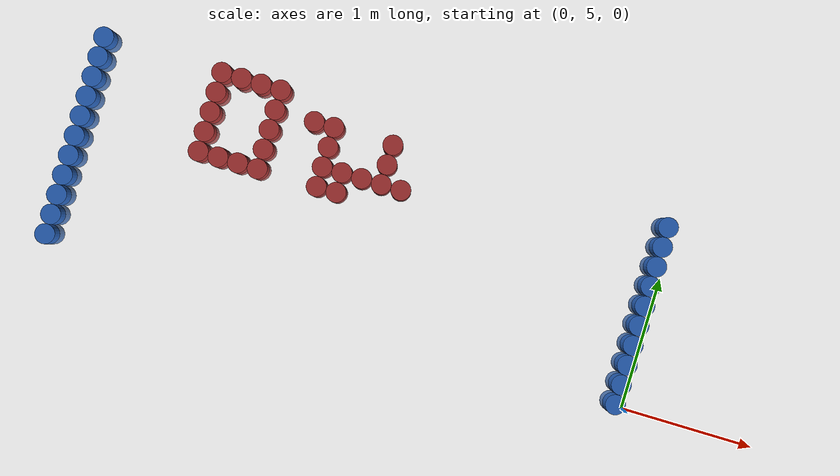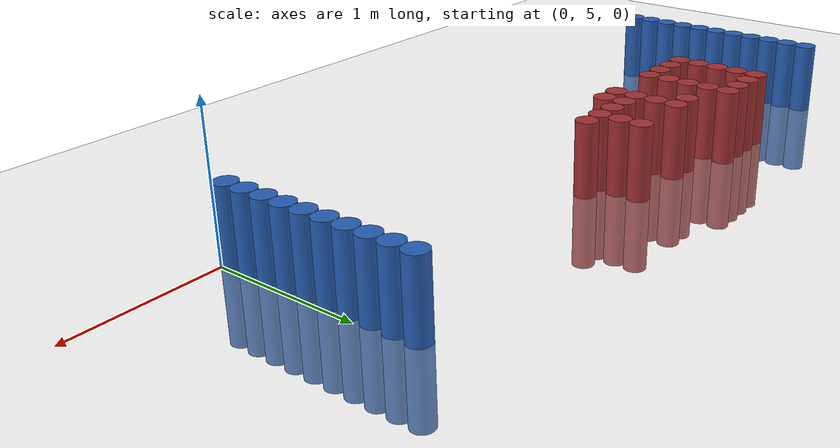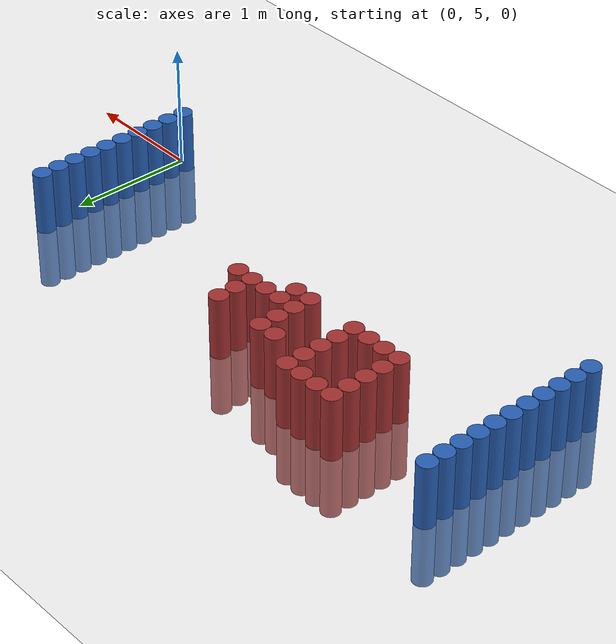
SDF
<sdf version="1.6">
 <world name="default">
  <model name="ground_plane">
   <static>1</static>
   <link name="link">
    <collision name="collision">
     <geometry><plane><normal>0 0 1</normal><size>100 100</size></plane></geometry>
     <surface><friction><ode><mu>100</mu><mu2>50</mu2></ode></friction></surface>
    </collision>
    <visual name="visual">
     <cast_shadows>0</cast_shadows>
     <geometry><plane><normal>0 0 1</normal><size>100 100</size></plane></geometry>
     <material>
      <script><uri>file://media/materials/scripts/gazebo.material</uri><name>Gazebo/Grey</name></script>
     </material>
    </visual>
   </link>
  </model>
  <model name="unit_cylinder_94">
   <static>1</static>
   <pose>-0.075000 5.025000 0.000000 0.000000 0.000000 0.000000</pose>
   <link name="link">
    <inertial>
     <mass>1</mass>
     <inertia><ixx>0.145833</ixx><ixy>0</ixy><ixz>0</ixz><iyy>0.145833</iyy><iyz>0</iyz><izz>0.125</izz></inertia>
    </inertial>
    <collision name="collision">
     <geometry><cylinder><radius>0.075000</radius><length>1</length></cylinder></geometry>
    </collision>
    <visual name="visual">
     <geometry><cylinder><radius>0.075000</radius><length>1</length></cylinder></geometry>
     <material>
      <ambient>0.152000 0.379000 0.720000 1</ambient>
      <diffuse>0.152000 0.379000 0.720000 1</diffuse>
     </material>
     <material>
      <script><name>Gazebo/Grey</name><uri>file://media/materials/scripts/gazebo.material</uri></script>
     </material>
    </visual>
   </link>
  </model>
  <model name="unit_cylinder_95">
   <static>1</static>
   <pose>-4.425000 5.025000 0.000000 0.000000 0.000000 0.000000</pose>
   <link name="link">
    <inertial>
     <mass>1</mass>
     <inertia><ixx>0.145833</ixx><ixy>0</ixy><ixz>0</ixz><iyy>0.145833</iyy><iyz>0</iyz><izz>0.125</izz></inertia>
    </inertial>
    <collision name="collision">
     <geometry><cylinder><radius>0.075000</radius><length>1</length></cylinder></geometry>
    </collision>
    <visual name="visual">
     <geometry><cylinder><radius>0.075000</radius><length>1</length></cylinder></geometry>
     <material>
      <ambient>0.152000 0.379000 0.720000 1</ambient>
      <diffuse>0.152000 0.379000 0.720000 1</diffuse>
     </material>
     <material>
      <script><name>Gazebo/Grey</name><uri>file://media/materials/scripts/gazebo.material</uri></script>
     </material>
    </visual>
   </link>
  </model>
  <model name="unit_cylinder_96">
   <static>1</static>
   <pose>-4.425000 5.175000 0.000000 0.000000 0.000000 0.000000</pose>
   <link name="link">
    <inertial>
     <mass>1</mass>
     <inertia><ixx>0.145833</ixx><ixy>0</ixy><ixz>0</ixz><iyy>0.145833</iyy><iyz>0</iyz><izz>0.125</izz></inertia>
    </inertial>
    <collision name="collision">
     <geometry><cylinder><radius>0.075000</radius><length>1</length></cylinder></geometry>
    </collision>
    <visual name="visual">
     <geometry><cylinder><radius>0.075000</radius><length>1</length></cylinder></geometry>
     <material>
      <ambient>0.152000 0.379000 0.720000 1</ambient>
      <diffuse>0.152000 0.379000 0.720000 1</diffuse>
     </material>
     <material>
      <script><name>Gazebo/Grey</name><uri>file://media/materials/scripts/gazebo.material</uri></script>
     </material>
    </visual>
   </link>
  </model>
  <model name="unit_cylinder_97">
   <static>1</static>
   <pose>-4.425000 5.325000 0.000000 0.000000 0.000000 0.000000</pose>
   <link name="link">
    <inertial>
     <mass>1</mass>
     <inertia><ixx>0.145833</ixx><ixy>0</ixy><ixz>0</ixz><iyy>0.145833</iyy><iyz>0</iyz><izz>0.125</izz></inertia>
    </inertial>
    <collision name="collision">
     <geometry><cylinder><radius>0.075000</radius><length>1</length></cylinder></geometry>
    </collision>
    <visual name="visual">
     <geometry><cylinder><radius>0.075000</radius><length>1</length></cylinder></geometry>
     <material>
      <ambient>0.152000 0.379000 0.720000 1</ambient>
      <diffuse>0.152000 0.379000 0.720000 1</diffuse>
     </material>
     <material>
      <script><name>Gazebo/Grey</name><uri>file://media/materials/scripts/gazebo.material</uri></script>
     </material>
    </visual>
   </link>
  </model>
  <model name="unit_cylinder_98">
   <static>1</static>
   <pose>-4.425000 5.475000 0.000000 0.000000 0.000000 0.000000</pose>
   <link name="link">
    <inertial>
     <mass>1</mass>
     <inertia><ixx>0.145833</ixx><ixy>0</ixy><ixz>0</ixz><iyy>0.145833</iyy><iyz>0</iyz><izz>0.125</izz></inertia>
    </inertial>
    <collision name="collision">
     <geometry><cylinder><radius>0.075000</radius><length>1</length></cylinder></geometry>
    </collision>
    <visual name="visual">
     <geometry><cylinder><radius>0.075000</radius><length>1</length></cylinder></geometry>
     <material>
      <ambient>0.152000 0.379000 0.720000 1</ambient>
      <diffuse>0.152000 0.379000 0.720000 1</diffuse>
     </material>
     <material>
      <script><name>Gazebo/Grey</name><uri>file://media/materials/scripts/gazebo.material</uri></script>
     </material>
    </visual>
   </link>
  </model>
  <model name="unit_cylinder_99">
   <static>1</static>
   <pose>-4.425000 5.625000 0.000000 0.000000 0.000000 0.000000</pose>
   <link name="link">
    <inertial>
     <mass>1</mass>
     <inertia><ixx>0.145833</ixx><ixy>0</ixy><ixz>0</ixz><iyy>0.145833</iyy><iyz>0</iyz><izz>0.125</izz></inertia>
    </inertial>
    <collision name="collision">
     <geometry><cylinder><radius>0.075000</radius><length>1</length></cylinder></geometry>
    </collision>
    <visual name="visual">
     <geometry><cylinder><radius>0.075000</radius><length>1</length></cylinder></geometry>
     <material>
      <ambient>0.152000 0.379000 0.720000 1</ambient>
      <diffuse>0.152000 0.379000 0.720000 1</diffuse>
     </material>
     <material>
      <script><name>Gazebo/Grey</name><uri>file://media/materials/scripts/gazebo.material</uri></script>
     </material>
    </visual>
   </link>
  </model>
  <model name="unit_cylinder_100">
   <static>1</static>
   <pose>-4.425000 5.775000 0.000000 0.000000 0.000000 0.000000</pose>
   <link name="link">
    <inertial>
     <mass>1</mass>
     <inertia><ixx>0.145833</ixx><ixy>0</ixy><ixz>0</ixz><iyy>0.145833</iyy><iyz>0</iyz><izz>0.125</izz></inertia>
    </inertial>
    <collision name="collision">
     <geometry><cylinder><radius>0.075000</radius><length>1</length></cylinder></geometry>
    </collision>
    <visual name="visual">
     <geometry><cylinder><radius>0.075000</radius><length>1</length></cylinder></geometry>
     <material>
      <ambient>0.152000 0.379000 0.720000 1</ambient>
      <diffuse>0.152000 0.379000 0.720000 1</diffuse>
     </material>
     <material>
      <script><name>Gazebo/Grey</name><uri>file://media/materials/scripts/gazebo.material</uri></script>
     </material>
    </visual>
   </link>
  </model>
  <model name="unit_cylinder_101">
   <static>1</static>
   <pose>-4.425000 5.925000 0.000000 0.000000 0.000000 0.000000</pose>
   <link name="link">
    <inertial>
     <mass>1</mass>
     <inertia><ixx>0.145833</ixx><ixy>0</ixy><ixz>0</ixz><iyy>0.145833</iyy><iyz>0</iyz><izz>0.125</izz></inertia>
    </inertial>
    <collision name="collision">
     <geometry><cylinder><radius>0.075000</radius><length>1</length></cylinder></geometry>
    </collision>
    <visual name="visual">
     <geometry><cylinder><radius>0.075000</radius><length>1</length></cylinder></geometry>
     <material>
      <ambient>0.152000 0.379000 0.720000 1</ambient>
      <diffuse>0.152000 0.379000 0.720000 1</diffuse>
     </material>
     <material>
      <script><name>Gazebo/Grey</name><uri>file://media/materials/scripts/gazebo.material</uri></script>
     </material>
    </visual>
   </link>
  </model>
  <model name="unit_cylinder_102">
   <static>1</static>
   <pose>-4.425000 6.075000 0.000000 0.000000 0.000000 0.000000</pose>
   <link name="link">
    <inertial>
     <mass>1</mass>
     <inertia><ixx>0.145833</ixx><ixy>0</ixy><ixz>0</ixz><iyy>0.145833</iyy><iyz>0</iyz><izz>0.125</izz></inertia>
    </inertial>
    <collision name="collision">
     <geometry><cylinder><radius>0.075000</radius><length>1</length></cylinder></geometry>
    </collision>
    <visual name="visual">
     <geometry><cylinder><radius>0.075000</radius><length>1</length></cylinder></geometry>
     <material>
      <ambient>0.152000 0.379000 0.720000 1</ambient>
      <diffuse>0.152000 0.379000 0.720000 1</diffuse>
     </material>
     <material>
      <script><name>Gazebo/Grey</name><uri>file://media/materials/scripts/gazebo.material</uri></script>
     </material>
    </visual>
   </link>
  </model>
  <model name="unit_cylinder_103">
   <static>1</static>
   <pose>-4.425000 6.225000 0.000000 0.000000 0.000000 0.000000</pose>
   <link name="link">
    <inertial>
     <mass>1</mass>
     <inertia><ixx>0.145833</ixx><ixy>0</ixy><ixz>0</ixz><iyy>0.145833</iyy><iyz>0</iyz><izz>0.125</izz></inertia>
    </inertial>
    <collision name="collision">
     <geometry><cylinder><radius>0.075000</radius><length>1</length></cylinder></geometry>
    </collision>
    <visual name="visual">
     <geometry><cylinder><radius>0.075000</radius><length>1</length></cylinder></geometry>
     <material>
      <ambient>0.152000 0.379000 0.720000 1</ambient>
      <diffuse>0.152000 0.379000 0.720000 1</diffuse>
     </material>
     <material>
      <script><name>Gazebo/Grey</name><uri>file://media/materials/scripts/gazebo.material</uri></script>
     </material>
    </visual>
   </link>
  </model>
  <model name="unit_cylinder_104">
   <static>1</static>
   <pose>-4.425000 6.375000 0.000000 0.000000 0.000000 0.000000</pose>
   <link name="link">
    <inertial>
     <mass>1</mass>
     <inertia><ixx>0.145833</ixx><ixy>0</ixy><ixz>0</ixz><iyy>0.145833</iyy><iyz>0</iyz><izz>0.125</izz></inertia>
    </inertial>
    <collision name="collision">
     <geometry><cylinder><radius>0.075000</radius><length>1</length></cylinder></geometry>
    </collision>
    <visual name="visual">
     <geometry><cylinder><radius>0.075000</radius><length>1</length></cylinder></geometry>
     <material>
      <ambient>0.152000 0.379000 0.720000 1</ambient>
      <diffuse>0.152000 0.379000 0.720000 1</diffuse>
     </material>
     <material>
      <script><name>Gazebo/Grey</name><uri>file://media/materials/scripts/gazebo.material</uri></script>
     </material>
    </visual>
   </link>
  </model>
  <model name="unit_cylinder_105">
   <static>1</static>
   <pose>-4.425000 6.525000 0.000000 0.000000 0.000000 0.000000</pose>
   <link name="link">
    <inertial>
     <mass>1</mass>
     <inertia><ixx>0.145833</ixx><ixy>0</ixy><ixz>0</ixz><iyy>0.145833</iyy><iyz>0</iyz><izz>0.125</izz></inertia>
    </inertial>
    <collision name="collision">
     <geometry><cylinder><radius>0.075000</radius><length>1</length></cylinder></geometry>
    </collision>
    <visual name="visual">
     <geometry><cylinder><radius>0.075000</radius><length>1</length></cylinder></geometry>
     <material>
      <ambient>0.152000 0.379000 0.720000 1</ambient>
      <diffuse>0.152000 0.379000 0.720000 1</diffuse>
     </material>
     <material>
      <script><name>Gazebo/Grey</name><uri>file://media/materials/scripts/gazebo.material</uri></script>
     </material>
    </visual>
   </link>
  </model>
  <model name="unit_cylinder_137">
   <static>1</static>
   <pose>-3.525000 5.925000 0.000000 0.000000 0.000000 0.000000</pose>
   <link name="link">
    <inertial>
     <mass>1</mass>
     <inertia><ixx>0.145833</ixx><ixy>0</ixy><ixz>0</ixz><iyy>0.145833</iyy><iyz>0</iyz><izz>0.125</izz></inertia>
    </inertial>
    <collision name="collision">
     <geometry><cylinder><radius>0.075000</radius><length>1</length></cylinder></geometry>
    </collision>
    <visual name="visual">
     <geometry><cylinder><radius>0.075000</radius><length>1</length></cylinder></geometry>
     <material>
      <ambient>0.648000 0.192000 0.192000 1</ambient>
      <diffuse>0.648000 0.192000 0.192000 1</diffuse>
     </material>
     <material>
      <script><name>Gazebo/Grey</name><uri>file://media/materials/scripts/gazebo.material</uri></script>
     </material>
    </visual>
   </link>
  </model>
  <model name="unit_cylinder_138">
   <static>1</static>
   <pose>-3.525000 6.075000 0.000000 0.000000 0.000000 0.000000</pose>
   <link name="link">
    <inertial>
     <mass>1</mass>
     <inertia><ixx>0.145833</ixx><ixy>0</ixy><ixz>0</ixz><iyy>0.145833</iyy><iyz>0</iyz><izz>0.125</izz></inertia>
    </inertial>
    <collision name="collision">
     <geometry><cylinder><radius>0.075000</radius><length>1</length></cylinder></geometry>
    </collision>
    <visual name="visual">
     <geometry><cylinder><radius>0.075000</radius><length>1</length></cylinder></geometry>
     <material>
      <ambient>0.648000 0.192000 0.192000 1</ambient>
      <diffuse>0.648000 0.192000 0.192000 1</diffuse>
     </material>
     <material>
      <script><name>Gazebo/Grey</name><uri>file://media/materials/scripts/gazebo.material</uri></script>
     </material>
    </visual>
   </link>
  </model>
  <model name="unit_cylinder_139">
   <static>1</static>
   <pose>-3.525000 6.225000 0.000000 0.000000 0.000000 0.000000</pose>
   <link name="link">
    <inertial>
     <mass>1</mass>
     <inertia><ixx>0.145833</ixx><ixy>0</ixy><ixz>0</ixz><iyy>0.145833</iyy><iyz>0</iyz><izz>0.125</izz></inertia>
    </inertial>
    <collision name="collision">
     <geometry><cylinder><radius>0.075000</radius><length>1</length></cylinder></geometry>
    </collision>
    <visual name="visual">
     <geometry><cylinder><radius>0.075000</radius><length>1</length></cylinder></geometry>
     <material>
      <ambient>0.648000 0.192000 0.192000 1</ambient>
      <diffuse>0.648000 0.192000 0.192000 1</diffuse>
     </material>
     <material>
      <script><name>Gazebo/Grey</name><uri>file://media/materials/scripts/gazebo.material</uri></script>
     </material>
    </visual>
   </link>
  </model>
  <model name="unit_cylinder_140">
   <static>1</static>
   <pose>-3.525000 6.375000 0.000000 0.000000 0.000000 0.000000</pose>
   <link name="link">
    <inertial>
     <mass>1</mass>
     <inertia><ixx>0.145833</ixx><ixy>0</ixy><ixz>0</ixz><iyy>0.145833</iyy><iyz>0</iyz><izz>0.125</izz></inertia>
    </inertial>
    <collision name="collision">
     <geometry><cylinder><radius>0.075000</radius><length>1</length></cylinder></geometry>
    </collision>
    <visual name="visual">
     <geometry><cylinder><radius>0.075000</radius><length>1</length></cylinder></geometry>
     <material>
      <ambient>0.648000 0.192000 0.192000 1</ambient>
      <diffuse>0.648000 0.192000 0.192000 1</diffuse>
     </material>
     <material>
      <script><name>Gazebo/Grey</name><uri>file://media/materials/scripts/gazebo.material</uri></script>
     </material>
    </visual>
   </link>
  </model>
  <model name="unit_cylinder_141">
   <static>1</static>
   <pose>-3.525000 6.525000 0.000000 0.000000 0.000000 0.000000</pose>
   <link name="link">
    <inertial>
     <mass>1</mass>
     <inertia><ixx>0.145833</ixx><ixy>0</ixy><ixz>0</ixz><iyy>0.145833</iyy><iyz>0</iyz><izz>0.125</izz></inertia>
    </inertial>
    <collision name="collision">
     <geometry><cylinder><radius>0.075000</radius><length>1</length></cylinder></geometry>
    </collision>
    <visual name="visual">
     <geometry><cylinder><radius>0.075000</radius><length>1</length></cylinder></geometry>
     <material>
      <ambient>0.648000 0.192000 0.192000 1</ambient>
      <diffuse>0.648000 0.192000 0.192000 1</diffuse>
     </material>
     <material>
      <script><name>Gazebo/Grey</name><uri>file://media/materials/scripts/gazebo.material</uri></script>
     </material>
    </visual>
   </link>
  </model>
  <model name="unit_cylinder_145">
   <static>1</static>
   <pose>-3.375000 5.925000 0.000000 0.000000 0.000000 0.000000</pose>
   <link name="link">
    <inertial>
     <mass>1</mass>
     <inertia><ixx>0.145833</ixx><ixy>0</ixy><ixz>0</ixz><iyy>0.145833</iyy><iyz>0</iyz><izz>0.125</izz></inertia>
    </inertial>
    <collision name="collision">
     <geometry><cylinder><radius>0.075000</radius><length>1</length></cylinder></geometry>
    </collision>
    <visual name="visual">
     <geometry><cylinder><radius>0.075000</radius><length>1</length></cylinder></geometry>
     <material>
      <ambient>0.648000 0.192000 0.192000 1</ambient>
      <diffuse>0.648000 0.192000 0.192000 1</diffuse>
     </material>
     <material>
      <script><name>Gazebo/Grey</name><uri>file://media/materials/scripts/gazebo.material</uri></script>
     </material>
    </visual>
   </link>
  </model>
  <model name="unit_cylinder_146">
   <static>1</static>
   <pose>-3.375000 6.525000 0.000000 0.000000 0.000000 0.000000</pose>
   <link name="link">
    <inertial>
     <mass>1</mass>
     <inertia><ixx>0.145833</ixx><ixy>0</ixy><ixz>0</ixz><iyy>0.145833</iyy><iyz>0</iyz><izz>0.125</izz></inertia>
    </inertial>
    <collision name="collision">
     <geometry><cylinder><radius>0.075000</radius><length>1</length></cylinder></geometry>
    </collision>
    <visual name="visual">
     <geometry><cylinder><radius>0.075000</radius><length>1</length></cylinder></geometry>
     <material>
      <ambient>0.648000 0.192000 0.192000 1</ambient>
      <diffuse>0.648000 0.192000 0.192000 1</diffuse>
     </material>
     <material>
      <script><name>Gazebo/Grey</name><uri>file://media/materials/scripts/gazebo.material</uri></script>
     </material>
    </visual>
   </link>
  </model>
  <model name="unit_cylinder_151">
   <static>1</static>
   <pose>-3.225000 5.925000 0.000000 0.000000 0.000000 0.000000</pose>
   <link name="link">
    <inertial>
     <mass>1</mass>
     <inertia><ixx>0.145833</ixx><ixy>0</ixy><ixz>0</ixz><iyy>0.145833</iyy><iyz>0</iyz><izz>0.125</izz></inertia>
    </inertial>
    <collision name="collision">
     <geometry><cylinder><radius>0.075000</radius><length>1</length></cylinder></geometry>
    </collision>
    <visual name="visual">
     <geometry><cylinder><radius>0.075000</radius><length>1</length></cylinder></geometry>
     <material>
      <ambient>0.648000 0.192000 0.192000 1</ambient>
      <diffuse>0.648000 0.192000 0.192000 1</diffuse>
     </material>
     <material>
      <script><name>Gazebo/Grey</name><uri>file://media/materials/scripts/gazebo.material</uri></script>
     </material>
    </visual>
   </link>
  </model>
  <model name="unit_cylinder_152">
   <static>1</static>
   <pose>-3.225000 6.525000 0.000000 0.000000 0.000000 0.000000</pose>
   <link name="link">
    <inertial>
     <mass>1</mass>
     <inertia><ixx>0.145833</ixx><ixy>0</ixy><ixz>0</ixz><iyy>0.145833</iyy><iyz>0</iyz><izz>0.125</izz></inertia>
    </inertial>
    <collision name="collision">
     <geometry><cylinder><radius>0.075000</radius><length>1</length></cylinder></geometry>
    </collision>
    <visual name="visual">
     <geometry><cylinder><radius>0.075000</radius><length>1</length></cylinder></geometry>
     <material>
      <ambient>0.648000 0.192000 0.192000 1</ambient>
      <diffuse>0.648000 0.192000 0.192000 1</diffuse>
     </material>
     <material>
      <script><name>Gazebo/Grey</name><uri>file://media/materials/scripts/gazebo.material</uri></script>
     </material>
    </visual>
   </link>
  </model>
  <model name="unit_cylinder_156">
   <static>1</static>
   <pose>-3.075000 5.925000 0.000000 0.000000 0.000000 0.000000</pose>
   <link name="link">
    <inertial>
     <mass>1</mass>
     <inertia><ixx>0.145833</ixx><ixy>0</ixy><ixz>0</ixz><iyy>0.145833</iyy><iyz>0</iyz><izz>0.125</izz></inertia>
    </inertial>
    <collision name="collision">
     <geometry><cylinder><radius>0.075000</radius><length>1</length></cylinder></geometry>
    </collision>
    <visual name="visual">
     <geometry><cylinder><radius>0.075000</radius><length>1</length></cylinder></geometry>
     <material>
      <ambient>0.648000 0.192000 0.192000 1</ambient>
      <diffuse>0.648000 0.192000 0.192000 1</diffuse>
     </material>
     <material>
      <script><name>Gazebo/Grey</name><uri>file://media/materials/scripts/gazebo.material</uri></script>
     </material>
    </visual>
   </link>
  </model>
  <model name="unit_cylinder_157">
   <static>1</static>
   <pose>-3.075000 6.075000 0.000000 0.000000 0.000000 0.000000</pose>
   <link name="link">
    <inertial>
     <mass>1</mass>
     <inertia><ixx>0.145833</ixx><ixy>0</ixy><ixz>0</ixz><iyy>0.145833</iyy><iyz>0</iyz><izz>0.125</izz></inertia>
    </inertial>
    <collision name="collision">
     <geometry><cylinder><radius>0.075000</radius><length>1</length></cylinder></geometry>
    </collision>
    <visual name="visual">
     <geometry><cylinder><radius>0.075000</radius><length>1</length></cylinder></geometry>
     <material>
      <ambient>0.648000 0.192000 0.192000 1</ambient>
      <diffuse>0.648000 0.192000 0.192000 1</diffuse>
     </material>
     <material>
      <script><name>Gazebo/Grey</name><uri>file://media/materials/scripts/gazebo.material</uri></script>
     </material>
    </visual>
   </link>
  </model>
  <model name="unit_cylinder_158">
   <static>1</static>
   <pose>-3.075000 6.225000 0.000000 0.000000 0.000000 0.000000</pose>
   <link name="link">
    <inertial>
     <mass>1</mass>
     <inertia><ixx>0.145833</ixx><ixy>0</ixy><ixz>0</ixz><iyy>0.145833</iyy><iyz>0</iyz><izz>0.125</izz></inertia>
    </inertial>
    <collision name="collision">
     <geometry><cylinder><radius>0.075000</radius><length>1</length></cylinder></geometry>
    </collision>
    <visual name="visual">
     <geometry><cylinder><radius>0.075000</radius><length>1</length></cylinder></geometry>
     <material>
      <ambient>0.648000 0.192000 0.192000 1</ambient>
      <diffuse>0.648000 0.192000 0.192000 1</diffuse>
     </material>
     <material>
      <script><name>Gazebo/Grey</name><uri>file://media/materials/scripts/gazebo.material</uri></script>
     </material>
    </visual>
   </link>
  </model>
  <model name="unit_cylinder_159">
   <static>1</static>
   <pose>-3.075000 6.375000 0.000000 0.000000 0.000000 0.000000</pose>
   <link name="link">
    <inertial>
     <mass>1</mass>
     <inertia><ixx>0.145833</ixx><ixy>0</ixy><ixz>0</ixz><iyy>0.145833</iyy><iyz>0</iyz><izz>0.125</izz></inertia>
    </inertial>
    <collision name="collision">
     <geometry><cylinder><radius>0.075000</radius><length>1</length></cylinder></geometry>
    </collision>
    <visual name="visual">
     <geometry><cylinder><radius>0.075000</radius><length>1</length></cylinder></geometry>
     <material>
      <ambient>0.648000 0.192000 0.192000 1</ambient>
      <diffuse>0.648000 0.192000 0.192000 1</diffuse>
     </material>
     <material>
      <script><name>Gazebo/Grey</name><uri>file://media/materials/scripts/gazebo.material</uri></script>
     </material>
    </visual>
   </link>
  </model>
  <model name="unit_cylinder_160">
   <static>1</static>
   <pose>-3.075000 6.525000 0.000000 0.000000 0.000000 0.000000</pose>
   <link name="link">
    <inertial>
     <mass>1</mass>
     <inertia><ixx>0.145833</ixx><ixy>0</ixy><ixz>0</ixz><iyy>0.145833</iyy><iyz>0</iyz><izz>0.125</izz></inertia>
    </inertial>
    <collision name="collision">
     <geometry><cylinder><radius>0.075000</radius><length>1</length></cylinder></geometry>
    </collision>
    <visual name="visual">
     <geometry><cylinder><radius>0.075000</radius><length>1</length></cylinder></geometry>
     <material>
      <ambient>0.648000 0.192000 0.192000 1</ambient>
      <diffuse>0.648000 0.192000 0.192000 1</diffuse>
     </material>
     <material>
      <script><name>Gazebo/Grey</name><uri>file://media/materials/scripts/gazebo.material</uri></script>
     </material>
    </visual>
   </link>
  </model>
  <model name="unit_cylinder_168">
   <static>1</static>
   <pose>-2.775000 6.375000 0.000000 0.000000 0.000000 0.000000</pose>
   <link name="link">
    <inertial>
     <mass>1</mass>
     <inertia><ixx>0.145833</ixx><ixy>0</ixy><ixz>0</ixz><iyy>0.145833</iyy><iyz>0</iyz><izz>0.125</izz></inertia>
    </inertial>
    <collision name="collision">
     <geometry><cylinder><radius>0.075000</radius><length>1</length></cylinder></geometry>
    </collision>
    <visual name="visual">
     <geometry><cylinder><radius>0.075000</radius><length>1</length></cylinder></geometry>
     <material>
      <ambient>0.648000 0.192000 0.192000 1</ambient>
      <diffuse>0.648000 0.192000 0.192000 1</diffuse>
     </material>
     <material>
      <script><name>Gazebo/Grey</name><uri>file://media/materials/scripts/gazebo.material</uri></script>
     </material>
    </visual>
   </link>
  </model>
  <model name="unit_cylinder_174">
   <static>1</static>
   <pose>-2.625000 5.925000 0.000000 0.000000 0.000000 0.000000</pose>
   <link name="link">
    <inertial>
     <mass>1</mass>
     <inertia><ixx>0.145833</ixx><ixy>0</ixy><ixz>0</ixz><iyy>0.145833</iyy><iyz>0</iyz><izz>0.125</izz></inertia>
    </inertial>
    <collision name="collision">
     <geometry><cylinder><radius>0.075000</radius><length>1</length></cylinder></geometry>
    </collision>
    <visual name="visual">
     <geometry><cylinder><radius>0.075000</radius><length>1</length></cylinder></geometry>
     <material>
      <ambient>0.648000 0.192000 0.192000 1</ambient>
      <diffuse>0.648000 0.192000 0.192000 1</diffuse>
     </material>
     <material>
      <script><name>Gazebo/Grey</name><uri>file://media/materials/scripts/gazebo.material</uri></script>
     </material>
    </visual>
   </link>
  </model>
  <model name="unit_cylinder_175">
   <static>1</static>
   <pose>-2.625000 6.075000 0.000000 0.000000 0.000000 0.000000</pose>
   <link name="link">
    <inertial>
     <mass>1</mass>
     <inertia><ixx>0.145833</ixx><ixy>0</ixy><ixz>0</ixz><iyy>0.145833</iyy><iyz>0</iyz><izz>0.125</izz></inertia>
    </inertial>
    <collision name="collision">
     <geometry><cylinder><radius>0.075000</radius><length>1</length></cylinder></geometry>
    </collision>
    <visual name="visual">
     <geometry><cylinder><radius>0.075000</radius><length>1</length></cylinder></geometry>
     <material>
      <ambient>0.648000 0.192000 0.192000 1</ambient>
      <diffuse>0.648000 0.192000 0.192000 1</diffuse>
     </material>
     <material>
      <script><name>Gazebo/Grey</name><uri>file://media/materials/scripts/gazebo.material</uri></script>
     </material>
    </visual>
   </link>
  </model>
  <model name="unit_cylinder_176">
   <static>1</static>
   <pose>-2.625000 6.225000 0.000000 0.000000 0.000000 0.000000</pose>
   <link name="link">
    <inertial>
     <mass>1</mass>
     <inertia><ixx>0.145833</ixx><ixy>0</ixy><ixz>0</ixz><iyy>0.145833</iyy><iyz>0</iyz><izz>0.125</izz></inertia>
    </inertial>
    <collision name="collision">
     <geometry><cylinder><radius>0.075000</radius><length>1</length></cylinder></geometry>
    </collision>
    <visual name="visual">
     <geometry><cylinder><radius>0.075000</radius><length>1</length></cylinder></geometry>
     <material>
      <ambient>0.648000 0.192000 0.192000 1</ambient>
      <diffuse>0.648000 0.192000 0.192000 1</diffuse>
     </material>
     <material>
      <script><name>Gazebo/Grey</name><uri>file://media/materials/scripts/gazebo.material</uri></script>
     </material>
    </visual>
   </link>
  </model>
  <model name="unit_cylinder_177">
   <static>1</static>
   <pose>-2.625000 6.375000 0.000000 0.000000 0.000000 0.000000</pose>
   <link name="link">
    <inertial>
     <mass>1</mass>
     <inertia><ixx>0.145833</ixx><ixy>0</ixy><ixz>0</ixz><iyy>0.145833</iyy><iyz>0</iyz><izz>0.125</izz></inertia>
    </inertial>
    <collision name="collision">
     <geometry><cylinder><radius>0.075000</radius><length>1</length></cylinder></geometry>
    </collision>
    <visual name="visual">
     <geometry><cylinder><radius>0.075000</radius><length>1</length></cylinder></geometry>
     <material>
      <ambient>0.648000 0.192000 0.192000 1</ambient>
      <diffuse>0.648000 0.192000 0.192000 1</diffuse>
     </material>
     <material>
      <script><name>Gazebo/Grey</name><uri>file://media/materials/scripts/gazebo.material</uri></script>
     </material>
    </visual>
   </link>
  </model>
  <model name="unit_cylinder_183">
   <static>1</static>
   <pose>-2.475000 5.925000 0.000000 0.000000 0.000000 0.000000</pose>
   <link name="link">
    <inertial>
     <mass>1</mass>
     <inertia><ixx>0.145833</ixx><ixy>0</ixy><ixz>0</ixz><iyy>0.145833</iyy><iyz>0</iyz><izz>0.125</izz></inertia>
    </inertial>
    <collision name="collision">
     <geometry><cylinder><radius>0.075000</radius><length>1</length></cylinder></geometry>
    </collision>
    <visual name="visual">
     <geometry><cylinder><radius>0.075000</radius><length>1</length></cylinder></geometry>
     <material>
      <ambient>0.648000 0.192000 0.192000 1</ambient>
      <diffuse>0.648000 0.192000 0.192000 1</diffuse>
     </material>
     <material>
      <script><name>Gazebo/Grey</name><uri>file://media/materials/scripts/gazebo.material</uri></script>
     </material>
    </visual>
   </link>
  </model>
  <model name="unit_cylinder_184">
   <static>1</static>
   <pose>-2.475000 6.075000 0.000000 0.000000 0.000000 0.000000</pose>
   <link name="link">
    <inertial>
     <mass>1</mass>
     <inertia><ixx>0.145833</ixx><ixy>0</ixy><ixz>0</ixz><iyy>0.145833</iyy><iyz>0</iyz><izz>0.125</izz></inertia>
    </inertial>
    <collision name="collision">
     <geometry><cylinder><radius>0.075000</radius><length>1</length></cylinder></geometry>
    </collision>
    <visual name="visual">
     <geometry><cylinder><radius>0.075000</radius><length>1</length></cylinder></geometry>
     <material>
      <ambient>0.648000 0.192000 0.192000 1</ambient>
      <diffuse>0.648000 0.192000 0.192000 1</diffuse>
     </material>
     <material>
      <script><name>Gazebo/Grey</name><uri>file://media/materials/scripts/gazebo.material</uri></script>
     </material>
    </visual>
   </link>
  </model>
  <model name="unit_cylinder_193">
   <static>1</static>
   <pose>-2.325000 6.075000 0.000000 0.000000 0.000000 0.000000</pose>
   <link name="link">
    <inertial>
     <mass>1</mass>
     <inertia><ixx>0.145833</ixx><ixy>0</ixy><ixz>0</ixz><iyy>0.145833</iyy><iyz>0</iyz><izz>0.125</izz></inertia>
    </inertial>
    <collision name="collision">
     <geometry><cylinder><radius>0.075000</radius><length>1</length></cylinder></geometry>
    </collision>
    <visual name="visual">
     <geometry><cylinder><radius>0.075000</radius><length>1</length></cylinder></geometry>
     <material>
      <ambient>0.648000 0.192000 0.192000 1</ambient>
      <diffuse>0.648000 0.192000 0.192000 1</diffuse>
     </material>
     <material>
      <script><name>Gazebo/Grey</name><uri>file://media/materials/scripts/gazebo.material</uri></script>
     </material>
    </visual>
   </link>
  </model>
  <model name="unit_cylinder_196">
   <static>1</static>
   <pose>-2.175000 6.075000 0.000000 0.000000 0.000000 0.000000</pose>
   <link name="link">
    <inertial>
     <mass>1</mass>
     <inertia><ixx>0.145833</ixx><ixy>0</ixy><ixz>0</ixz><iyy>0.145833</iyy><iyz>0</iyz><izz>0.125</izz></inertia>
    </inertial>
    <collision name="collision">
     <geometry><cylinder><radius>0.075000</radius><length>1</length></cylinder></geometry>
    </collision>
    <visual name="visual">
     <geometry><cylinder><radius>0.075000</radius><length>1</length></cylinder></geometry>
     <material>
      <ambient>0.648000 0.192000 0.192000 1</ambient>
      <diffuse>0.648000 0.192000 0.192000 1</diffuse>
     </material>
     <material>
      <script><name>Gazebo/Grey</name><uri>file://media/materials/scripts/gazebo.material</uri></script>
     </material>
    </visual>
   </link>
  </model>
  <model name="unit_cylinder_197">
   <static>1</static>
   <pose>-2.175000 6.225000 0.000000 0.000000 0.000000 0.000000</pose>
   <link name="link">
    <inertial>
     <mass>1</mass>
     <inertia><ixx>0.145833</ixx><ixy>0</ixy><ixz>0</ixz><iyy>0.145833</iyy><iyz>0</iyz><izz>0.125</izz></inertia>
    </inertial>
    <collision name="collision">
     <geometry><cylinder><radius>0.075000</radius><length>1</length></cylinder></geometry>
    </collision>
    <visual name="visual">
     <geometry><cylinder><radius>0.075000</radius><length>1</length></cylinder></geometry>
     <material>
      <ambient>0.648000 0.192000 0.192000 1</ambient>
      <diffuse>0.648000 0.192000 0.192000 1</diffuse>
     </material>
     <material>
      <script><name>Gazebo/Grey</name><uri>file://media/materials/scripts/gazebo.material</uri></script>
     </material>
    </visual>
   </link>
  </model>
  <model name="unit_cylinder_198">
   <static>1</static>
   <pose>-2.175000 6.375000 0.000000 0.000000 0.000000 0.000000</pose>
   <link name="link">
    <inertial>
     <mass>1</mass>
     <inertia><ixx>0.145833</ixx><ixy>0</ixy><ixz>0</ixz><iyy>0.145833</iyy><iyz>0</iyz><izz>0.125</izz></inertia>
    </inertial>
    <collision name="collision">
     <geometry><cylinder><radius>0.075000</radius><length>1</length></cylinder></geometry>
    </collision>
    <visual name="visual">
     <geometry><cylinder><radius>0.075000</radius><length>1</length></cylinder></geometry>
     <material>
      <ambient>0.648000 0.192000 0.192000 1</ambient>
      <diffuse>0.648000 0.192000 0.192000 1</diffuse>
     </material>
     <material>
      <script><name>Gazebo/Grey</name><uri>file://media/materials/scripts/gazebo.material</uri></script>
     </material>
    </visual>
   </link>
  </model>
  <model name="unit_cylinder_202">
   <static>1</static>
   <pose>-2.025000 6.075000 0.000000 0.000000 0.000000 0.000000</pose>
   <link name="link">
    <inertial>
     <mass>1</mass>
     <inertia><ixx>0.145833</ixx><ixy>0</ixy><ixz>0</ixz><iyy>0.145833</iyy><iyz>0</iyz><izz>0.125</izz></inertia>
    </inertial>
    <collision name="collision">
     <geometry><cylinder><radius>0.075000</radius><length>1</length></cylinder></geometry>
    </collision>
    <visual name="visual">
     <geometry><cylinder><radius>0.075000</radius><length>1</length></cylinder></geometry>
     <material>
      <ambient>0.648000 0.192000 0.192000 1</ambient>
      <diffuse>0.648000 0.192000 0.192000 1</diffuse>
     </material>
     <material>
      <script><name>Gazebo/Grey</name><uri>file://media/materials/scripts/gazebo.material</uri></script>
     </material>
    </visual>
   </link>
  </model>
  <model name="unit_cylinder_251">
   <static>1</static>
   <pose>-0.075000 5.175000 0.000000 0.000000 0.000000 0.000000</pose>
   <link name="link">
    <inertial>
     <mass>1</mass>
     <inertia><ixx>0.145833</ixx><ixy>0</ixy><ixz>0</ixz><iyy>0.145833</iyy><iyz>0</iyz><izz>0.125</izz></inertia>
    </inertial>
    <collision name="collision">
     <geometry><cylinder><radius>0.075000</radius><length>1</length></cylinder></geometry>
    </collision>
    <visual name="visual">
     <geometry><cylinder><radius>0.075000</radius><length>1</length></cylinder></geometry>
     <material>
      <ambient>0.152000 0.379000 0.720000 1</ambient>
      <diffuse>0.152000 0.379000 0.720000 1</diffuse>
     </material>
     <material>
      <script><name>Gazebo/Grey</name><uri>file://media/materials/scripts/gazebo.material</uri></script>
     </material>
    </visual>
   </link>
  </model>
  <model name="unit_cylinder_252">
   <static>1</static>
   <pose>-0.075000 5.325000 0.000000 0.000000 0.000000 0.000000</pose>
   <link name="link">
    <inertial>
     <mass>1</mass>
     <inertia><ixx>0.145833</ixx><ixy>0</ixy><ixz>0</ixz><iyy>0.145833</iyy><iyz>0</iyz><izz>0.125</izz></inertia>
    </inertial>
    <collision name="collision">
     <geometry><cylinder><radius>0.075000</radius><length>1</length></cylinder></geometry>
    </collision>
    <visual name="visual">
     <geometry><cylinder><radius>0.075000</radius><length>1</length></cylinder></geometry>
     <material>
      <ambient>0.152000 0.379000 0.720000 1</ambient>
      <diffuse>0.152000 0.379000 0.720000 1</diffuse>
     </material>
     <material>
      <script><name>Gazebo/Grey</name><uri>file://media/materials/scripts/gazebo.material</uri></script>
     </material>
    </visual>
   </link>
  </model>
  <model name="unit_cylinder_253">
   <static>1</static>
   <pose>-0.075000 5.475000 0.000000 0.000000 0.000000 0.000000</pose>
   <link name="link">
    <inertial>
     <mass>1</mass>
     <inertia><ixx>0.145833</ixx><ixy>0</ixy><ixz>0</ixz><iyy>0.145833</iyy><iyz>0</iyz><izz>0.125</izz></inertia>
    </inertial>
    <collision name="collision">
     <geometry><cylinder><radius>0.075000</radius><length>1</length></cylinder></geometry>
    </collision>
    <visual name="visual">
     <geometry><cylinder><radius>0.075000</radius><length>1</length></cylinder></geometry>
     <material>
      <ambient>0.152000 0.379000 0.720000 1</ambient>
      <diffuse>0.152000 0.379000 0.720000 1</diffuse>
     </material>
     <material>
      <script><name>Gazebo/Grey</name><uri>file://media/materials/scripts/gazebo.material</uri></script>
     </material>
    </visual>
   </link>
  </model>
  <model name="unit_cylinder_254">
   <static>1</static>
   <pose>-0.075000 5.625000 0.000000 0.000000 0.000000 0.000000</pose>
   <link name="link">
    <inertial>
     <mass>1</mass>
     <inertia><ixx>0.145833</ixx><ixy>0</ixy><ixz>0</ixz><iyy>0.145833</iyy><iyz>0</iyz><izz>0.125</izz></inertia>
    </inertial>
    <collision name="collision">
     <geometry><cylinder><radius>0.075000</radius><length>1</length></cylinder></geometry>
    </collision>
    <visual name="visual">
     <geometry><cylinder><radius>0.075000</radius><length>1</length></cylinder></geometry>
     <material>
      <ambient>0.152000 0.379000 0.720000 1</ambient>
      <diffuse>0.152000 0.379000 0.720000 1</diffuse>
     </material>
     <material>
      <script><name>Gazebo/Grey</name><uri>file://media/materials/scripts/gazebo.material</uri></script>
     </material>
    </visual>
   </link>
  </model>
  <model name="unit_cylinder_255">
   <static>1</static>
   <pose>-0.075000 5.775000 0.000000 0.000000 0.000000 0.000000</pose>
   <link name="link">
    <inertial>
     <mass>1</mass>
     <inertia><ixx>0.145833</ixx><ixy>0</ixy><ixz>0</ixz><iyy>0.145833</iyy><iyz>0</iyz><izz>0.125</izz></inertia>
    </inertial>
    <collision name="collision">
     <geometry><cylinder><radius>0.075000</radius><length>1</length></cylinder></geometry>
    </collision>
    <visual name="visual">
     <geometry><cylinder><radius>0.075000</radius><length>1</length></cylinder></geometry>
     <material>
      <ambient>0.152000 0.379000 0.720000 1</ambient>
      <diffuse>0.152000 0.379000 0.720000 1</diffuse>
     </material>
     <material>
      <script><name>Gazebo/Grey</name><uri>file://media/materials/scripts/gazebo.material</uri></script>
     </material>
    </visual>
   </link>
  </model>
  <model name="unit_cylinder_256">
   <static>1</static>
   <pose>-0.075000 5.925000 0.000000 0.000000 0.000000 0.000000</pose>
   <link name="link">
    <inertial>
     <mass>1</mass>
     <inertia><ixx>0.145833</ixx><ixy>0</ixy><ixz>0</ixz><iyy>0.145833</iyy><iyz>0</iyz><izz>0.125</izz></inertia>
    </inertial>
    <collision name="collision">
     <geometry><cylinder><radius>0.075000</radius><length>1</length></cylinder></geometry>
    </collision>
    <visual name="visual">
     <geometry><cylinder><radius>0.075000</radius><length>1</length></cylinder></geometry>
     <material>
      <ambient>0.152000 0.379000 0.720000 1</ambient>
      <diffuse>0.152000 0.379000 0.720000 1</diffuse>
     </material>
     <material>
      <script><name>Gazebo/Grey</name><uri>file://media/materials/scripts/gazebo.material</uri></script>
     </material>
    </visual>
   </link>
  </model>
  <model name="unit_cylinder_257">
   <static>1</static>
   <pose>-0.075000 6.075000 0.000000 0.000000 0.000000 0.000000</pose>
   <link name="link">
    <inertial>
     <mass>1</mass>
     <inertia><ixx>0.145833</ixx><ixy>0</ixy><ixz>0</ixz><iyy>0.145833</iyy><iyz>0</iyz><izz>0.125</izz></inertia>
    </inertial>
    <collision name="collision">
     <geometry><cylinder><radius>0.075000</radius><length>1</length></cylinder></geometry>
    </collision>
    <visual name="visual">
     <geometry><cylinder><radius>0.075000</radius><length>1</length></cylinder></geometry>
     <material>
      <ambient>0.152000 0.379000 0.720000 1</ambient>
      <diffuse>0.152000 0.379000 0.720000 1</diffuse>
     </material>
     <material>
      <script><name>Gazebo/Grey</name><uri>file://media/materials/scripts/gazebo.material</uri></script>
     </material>
    </visual>
   </link>
  </model>
  <model name="unit_cylinder_258">
   <static>1</static>
   <pose>-0.075000 6.225000 0.000000 0.000000 0.000000 0.000000</pose>
   <link name="link">
    <inertial>
     <mass>1</mass>
     <inertia><ixx>0.145833</ixx><ixy>0</ixy><ixz>0</ixz><iyy>0.145833</iyy><iyz>0</iyz><izz>0.125</izz></inertia>
    </inertial>
    <collision name="collision">
     <geometry><cylinder><radius>0.075000</radius><length>1</length></cylinder></geometry>
    </collision>
    <visual name="visual">
     <geometry><cylinder><radius>0.075000</radius><length>1</length></cylinder></geometry>
     <material>
      <ambient>0.152000 0.379000 0.720000 1</ambient>
      <diffuse>0.152000 0.379000 0.720000 1</diffuse>
     </material>
     <material>
      <script><name>Gazebo/Grey</name><uri>file://media/materials/scripts/gazebo.material</uri></script>
     </material>
    </visual>
   </link>
  </model>
  <model name="unit_cylinder_259">
   <static>1</static>
   <pose>-0.075000 6.375000 0.000000 0.000000 0.000000 0.000000</pose>
   <link name="link">
    <inertial>
     <mass>1</mass>
     <inertia><ixx>0.145833</ixx><ixy>0</ixy><ixz>0</ixz><iyy>0.145833</iyy><iyz>0</iyz><izz>0.125</izz></inertia>
    </inertial>
    <collision name="collision">
     <geometry><cylinder><radius>0.075000</radius><length>1</length></cylinder></geometry>
    </collision>
    <visual name="visual">
     <geometry><cylinder><radius>0.075000</radius><length>1</length></cylinder></geometry>
     <material>
      <ambient>0.152000 0.379000 0.720000 1</ambient>
      <diffuse>0.152000 0.379000 0.720000 1</diffuse>
     </material>
     <material>
      <script><name>Gazebo/Grey</name><uri>file://media/materials/scripts/gazebo.material</uri></script>
     </material>
    </visual>
   </link>
  </model>
 </world>
</sdf>
